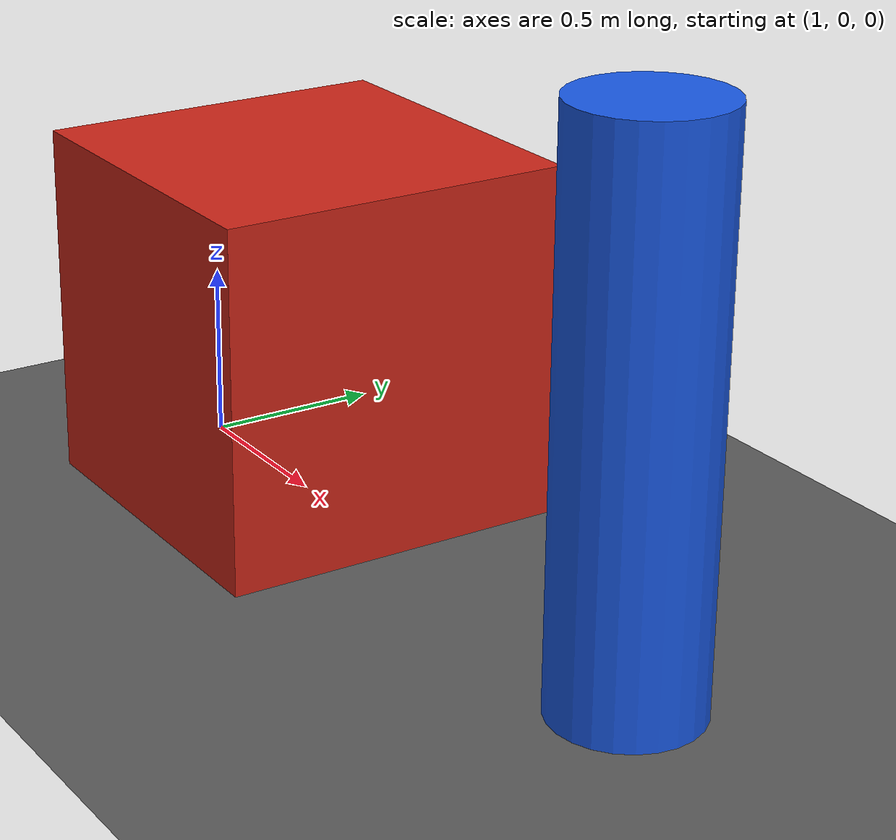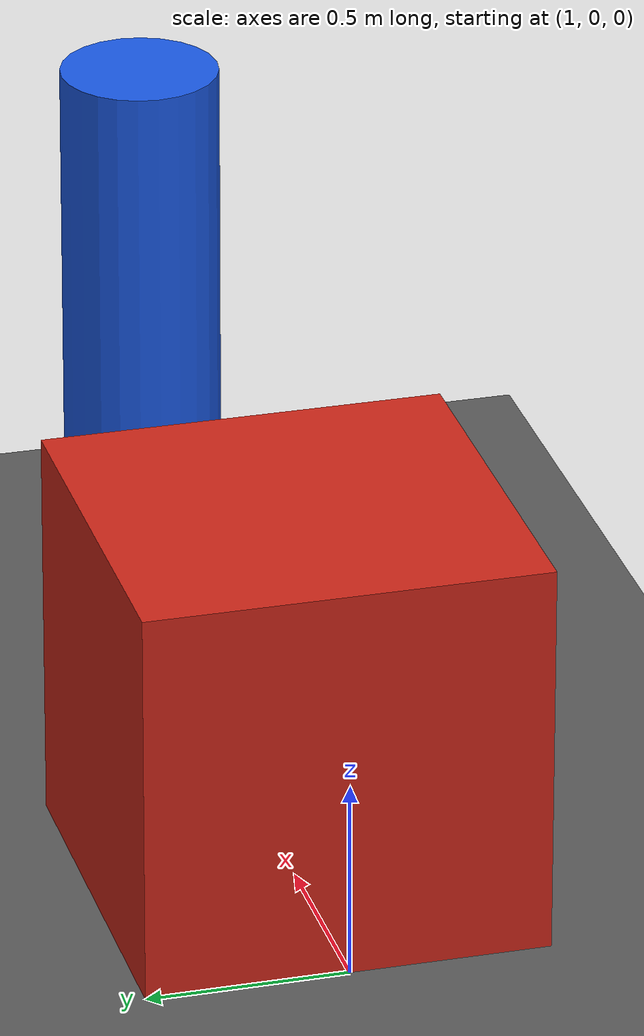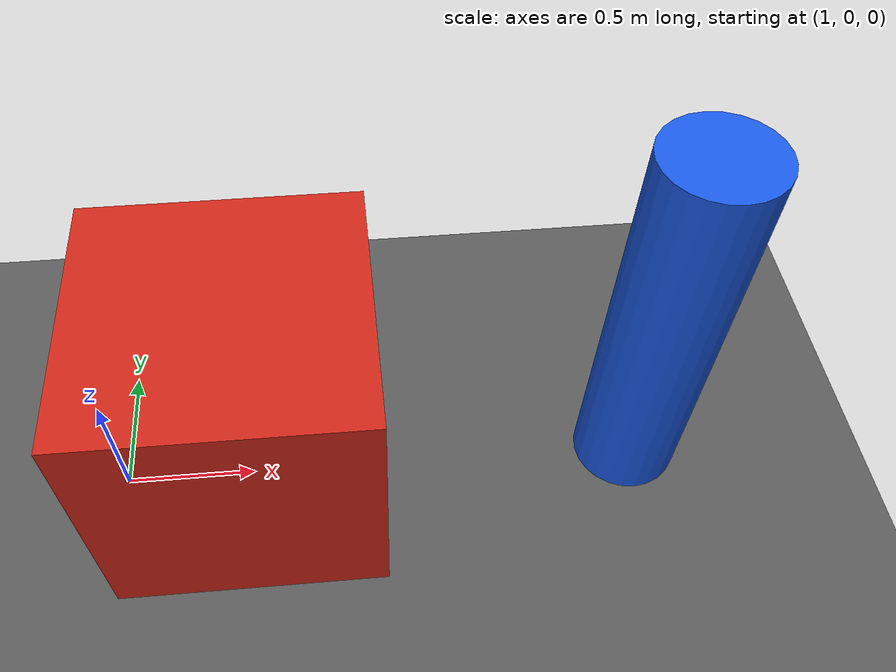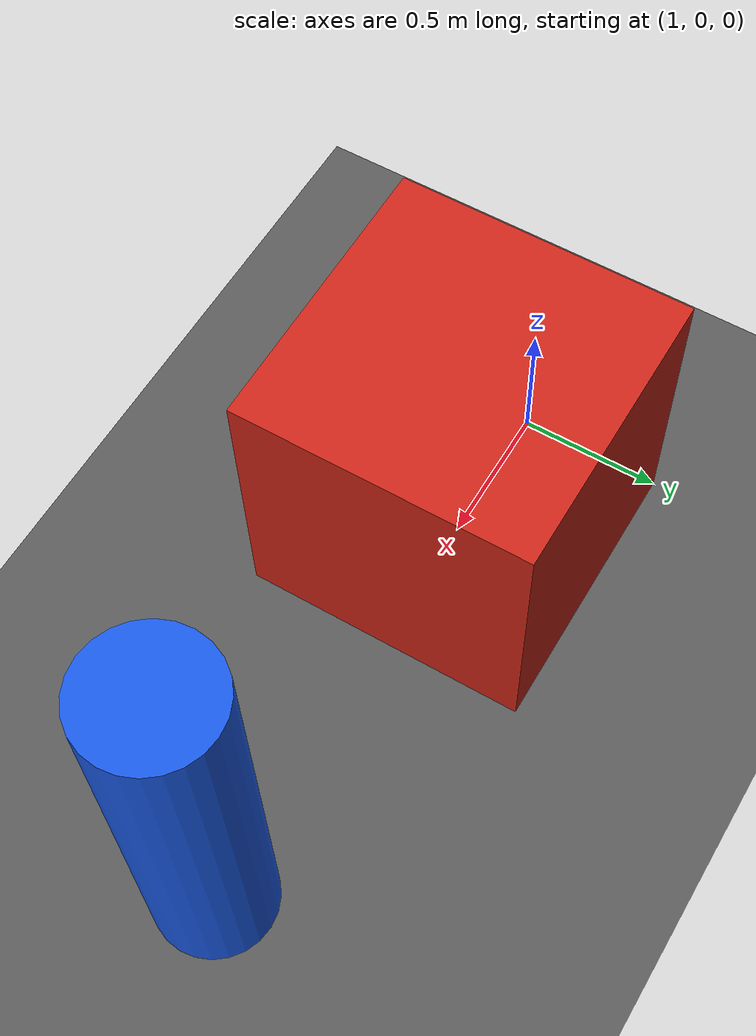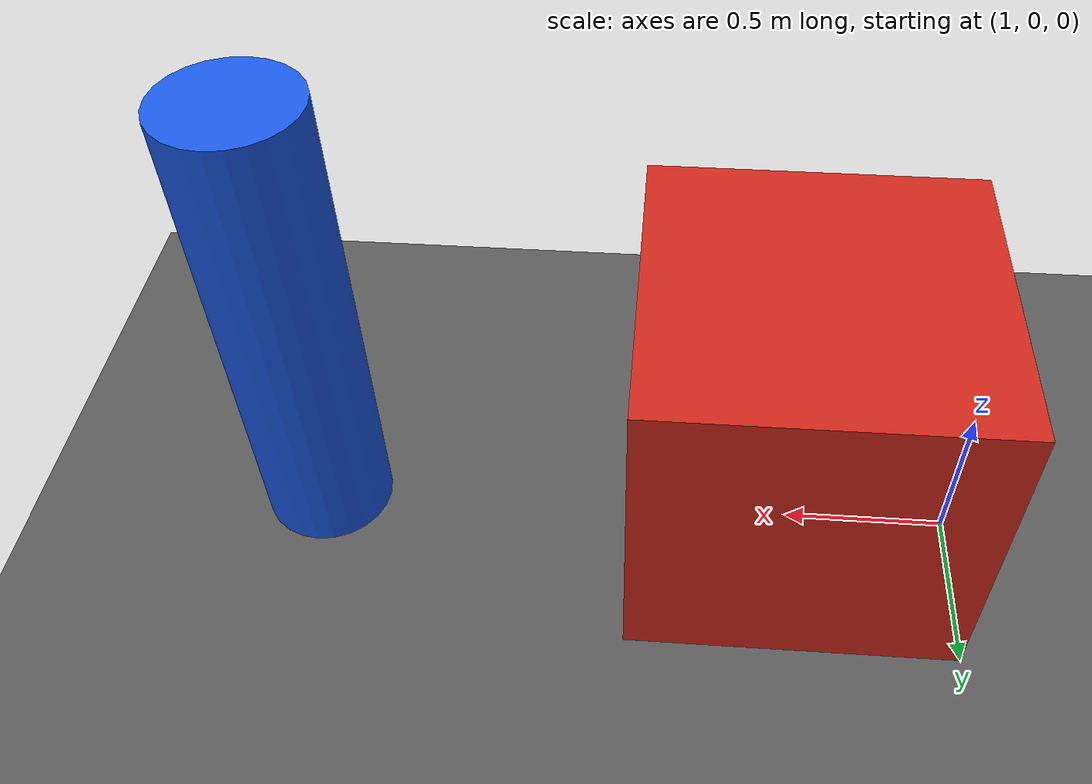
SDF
<?xml version="1.0" ?>
<sdf version="1.10">
  <world name="first_world">
    <gravity>0 0 -9.8</gravity>
    <physics name="default_physics" type="ignored">
      <max_step_size>0.001</max_step_size>
      <real_time_factor>1.0</real_time_factor>
    </physics>

    <plugin filename="gz-sim-physics-system"
            name="gz::sim::systems::Physics" />
    <plugin filename="gz-sim-user-commands-system"
            name="gz::sim::systems::UserCommands" />
    <plugin filename="gz-sim-scene-broadcaster-system"
            name="gz::sim::systems::SceneBroadcaster" />
    <plugin filename="gz-sim-sensors-system"
            name="gz::sim::systems::Sensors">
      <render_engine>ogre2</render_engine>
    </plugin>
    <plugin filename="gz-sim-imu-system"
            name="gz::sim::systems::Imu" />

    <light name="sun" type="directional">
      <pose>0 0 10 0 0 0</pose>
      <cast_shadows>true</cast_shadows>
      <direction>-0.5 0.1 -0.9</direction>
      <diffuse>1 1 1 1</diffuse>
      <specular>0.2 0.2 0.2 1</specular>
    </light>

    <model name="ground">
      <static>true</static>
      <link name="link">
        <collision name="collision">
          <geometry>
            <plane><normal>0 0 1</normal><size>20 20</size></plane>
          </geometry>
        </collision>
        <visual name="visual">
          <geometry>
            <plane><normal>0 0 1</normal><size>20 20</size></plane>
          </geometry>
          <material><diffuse>0.35 0.35 0.35 1</diffuse></material>
        </visual>
      </link>
    </model>

    <model name="training_box">
      <pose>1.5 0 0.5 0 0 0</pose>
      <link name="link">
        <inertial>
          <mass>1.0</mass>
          <!-- 한 변 1 m, 질량 1 kg인 균일한 상자: I = m(a² + b²) / 12. -->
          <inertia>
            <ixx>0.1666666667</ixx><iyy>0.1666666667</iyy><izz>0.1666666667</izz>
            <ixy>0</ixy><ixz>0</ixz><iyz>0</iyz>
          </inertia>
        </inertial>
        <collision name="collision">
          <geometry><box><size>1 1 1</size></box></geometry>
        </collision>
        <visual name="visual">
          <geometry><box><size>1 1 1</size></box></geometry>
          <material><diffuse>0.8 0.15 0.1 1</diffuse></material>
        </visual>
      </link>
    </model>

    <model name="beacon">
      <static>true</static>
      <pose>3 0 0.75 0 0 0</pose>
      <link name="link">
        <visual name="visual">
          <geometry><cylinder><radius>0.2</radius><length>1.5</length></cylinder></geometry>
          <material><diffuse>0.1 0.35 0.9 1</diffuse></material>
        </visual>
      </link>
    </model>
  </world>
</sdf>
